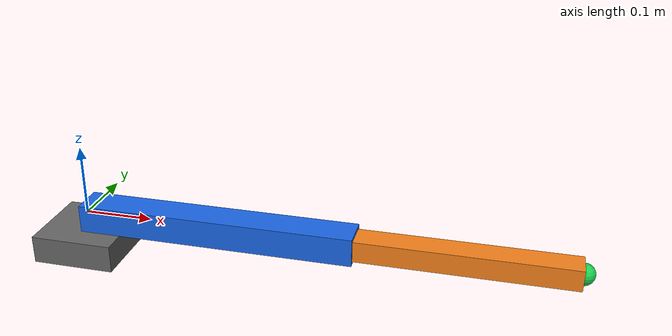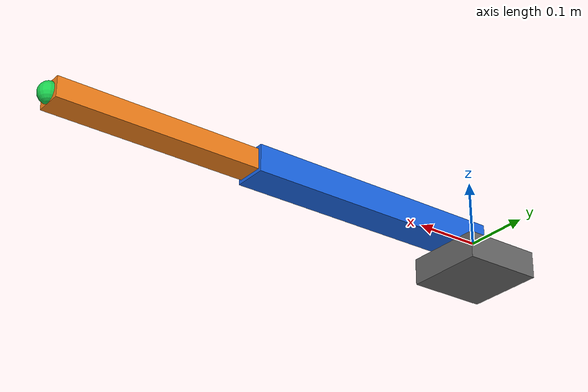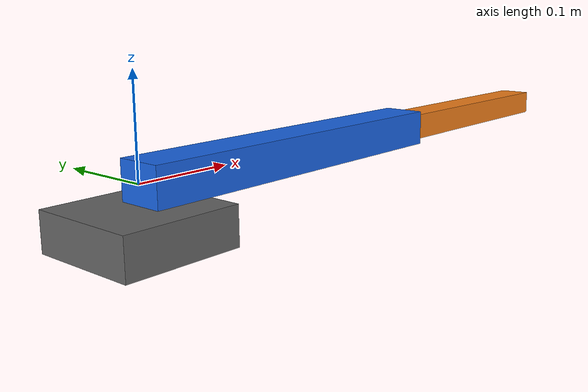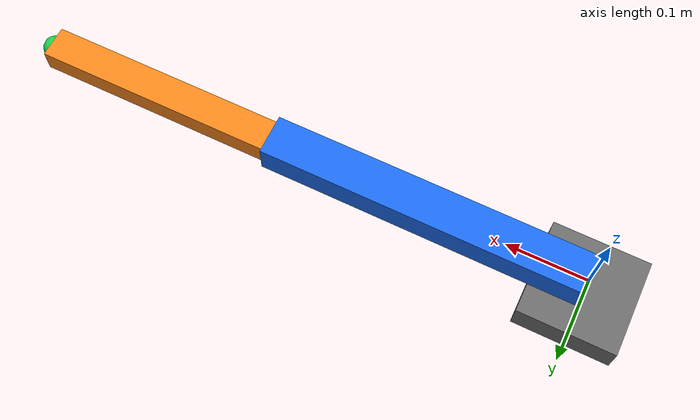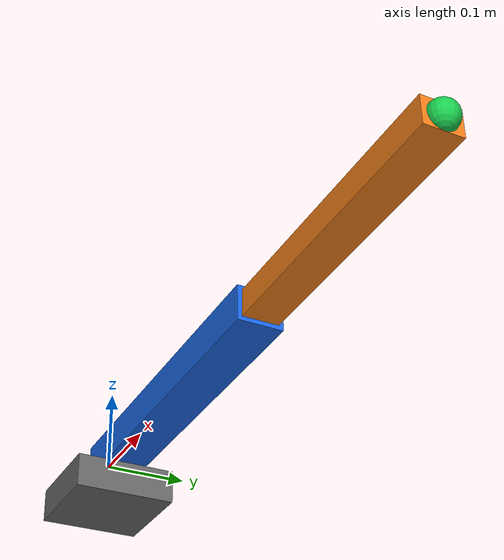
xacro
<?xml version="1.0"?>
<robot xmlns:xacro="http://www.ros.org/wiki/xacro" name="two_link_arm">
  <xacro:property name="arm_pi" value="3.141592653589793"/>
  <xacro:property name="link1_length" value="0.4"/>
  <xacro:property name="link2_length" value="0.3"/>
  <xacro:property name="base_length" value="0.12"/>
  <xacro:property name="base_width" value="0.12"/>
  <xacro:property name="base_height" value="0.04"/>
  <xacro:property name="link1_width" value="0.05"/>
  <xacro:property name="link1_height" value="0.04"/>
  <xacro:property name="link2_width" value="0.04"/>
  <xacro:property name="link2_height" value="0.03"/>
  <xacro:property name="tool_radius" value="0.015"/>
  <xacro:property name="base_mass" value="1.0"/>
  <xacro:property name="link1_mass" value="1.0"/>
  <xacro:property name="link2_mass" value="0.75"/>
  <xacro:property name="tool_mass" value="0.05"/>

  <material name="base_gray"><color rgba="0.4 0.4 0.4 1"/></material>
  <material name="link1_blue"><color rgba="0.1 0.4 0.9 1"/></material>
  <material name="link2_orange"><color rgba="0.95 0.5 0.1 1"/></material>
  <material name="tool_green"><color rgba="0.1 0.8 0.3 1"/></material>

  <xacro:macro name="box_link" params="name length width height mass center material">
    <link name="${name}">
      <visual>
        <origin xyz="${center}" rpy="0 0 0"/>
        <geometry><box size="${length} ${width} ${height}"/></geometry>
        <material name="${material}"/>
      </visual>
      <collision>
        <origin xyz="${center}" rpy="0 0 0"/>
        <geometry><box size="${length} ${width} ${height}"/></geometry>
      </collision>
      <inertial>
        <origin xyz="${center}" rpy="0 0 0"/>
        <mass value="${mass}"/>
        <inertia ixx="${mass * (width * width + height * height) / 12.0}"
                 ixy="0" ixz="0"
                 iyy="${mass * (length * length + height * height) / 12.0}"
                 iyz="0"
                 izz="${mass * (length * length + width * width) / 12.0}"/>
      </inertial>
    </link>
  </xacro:macro>

  <xacro:box_link name="base_link" length="${base_length}" width="${base_width}"
                  height="${base_height}" mass="${base_mass}"
                  center="0 0 -0.04" material="base_gray"/>
  <xacro:box_link name="link1" length="${link1_length}" width="${link1_width}"
                  height="${link1_height}" mass="${link1_mass}"
                  center="${link1_length / 2.0} 0 0" material="link1_blue"/>
  <xacro:box_link name="link2" length="${link2_length}" width="${link2_width}"
                  height="${link2_height}" mass="${link2_mass}"
                  center="${link2_length / 2.0} 0 0" material="link2_orange"/>

  <!-- tool0 is at the distal endpoint of link2, not its COM.
       The endpoint sphere is centered on tool0; uniform sphere I=2*m*r^2/5. -->
  <link name="tool0">
    <visual>
      <origin xyz="0 0 0" rpy="0 0 0"/>
      <geometry><sphere radius="${tool_radius}"/></geometry>
      <material name="tool_green"/>
    </visual>
    <collision>
      <origin xyz="0 0 0" rpy="0 0 0"/>
      <geometry><sphere radius="${tool_radius}"/></geometry>
    </collision>
    <inertial>
      <origin xyz="0 0 0" rpy="0 0 0"/>
      <mass value="${tool_mass}"/>
      <inertia ixx="${2.0 * tool_mass * tool_radius * tool_radius / 5.0}"
               ixy="0" ixz="0"
               iyy="${2.0 * tool_mass * tool_radius * tool_radius / 5.0}"
               iyz="0"
               izz="${2.0 * tool_mass * tool_radius * tool_radius / 5.0}"/>
    </inertial>
  </link>

  <joint name="joint1" type="revolute">
    <parent link="base_link"/>
    <child link="link1"/>
    <origin xyz="0 0 0" rpy="0 0 0"/>
    <axis xyz="0 0 1"/>
    <limit lower="${-arm_pi / 2.0}" upper="${arm_pi / 2.0}" effort="10" velocity="1"/>
  </joint>
  <joint name="joint2" type="revolute">
    <parent link="link1"/>
    <child link="link2"/>
    <origin xyz="${link1_length} 0 0" rpy="0 0 0"/>
    <axis xyz="0 0 1"/>
    <limit lower="${-arm_pi / 2.0}" upper="${arm_pi / 2.0}" effort="10" velocity="1"/>
  </joint>
  <joint name="tool0_fixed" type="fixed">
    <parent link="link2"/>
    <child link="tool0"/>
    <origin xyz="${link2_length} 0 0" rpy="0 0 0"/>
  </joint>
  <!-- Zero pose: tool0=(0.7,0,0) in base_link.
       FK: x=0.4*cos(q1)+0.3*cos(q1+q2),
           y=0.4*sin(q1)+0.3*sin(q1+q2), z=0, yaw=q1+q2. -->
</robot>
